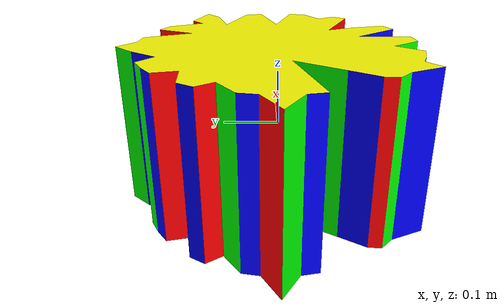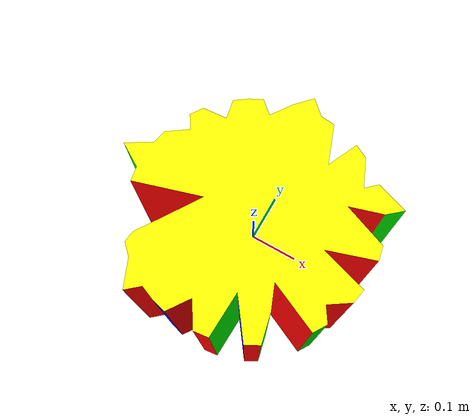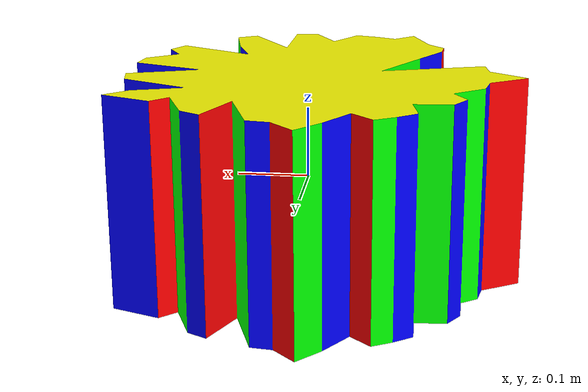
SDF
<?xml version="1.0"?>
<sdf version="1.6">
  <model name="50prism_final">
    <static>true</static>
    <pose>0 0 0 0 0 0</pose>
    <link name="link1">

      <visual name="visual1">
        <geometry>
          <mesh>
            <uri>model://50prism_final/meshes/50prism_final.DAE</uri>
   	    <scale>1 1 1</scale>
          </mesh>
        </geometry>
      </visual>

    </link>
  </model>
</sdf>
